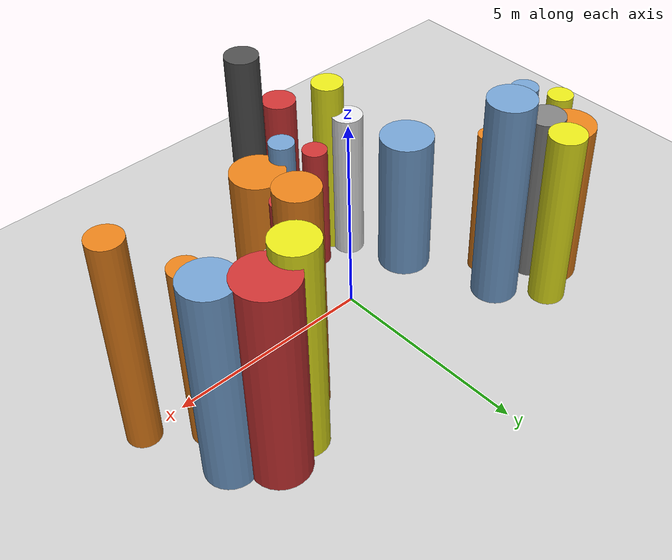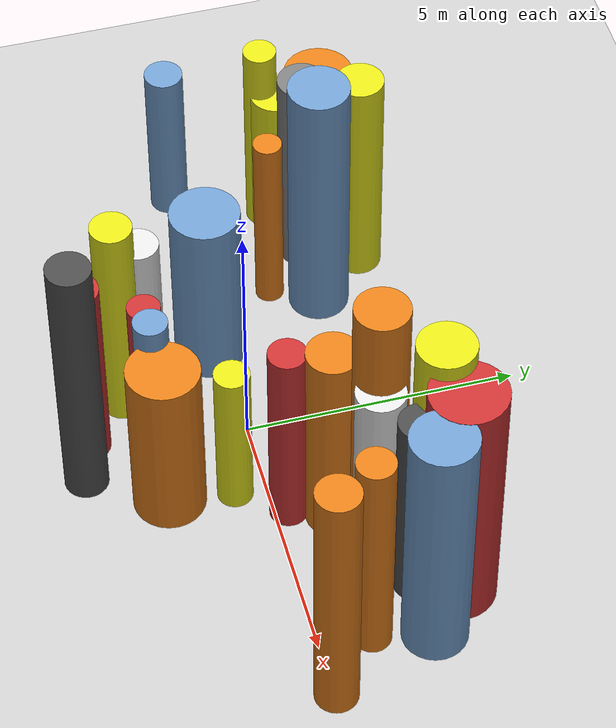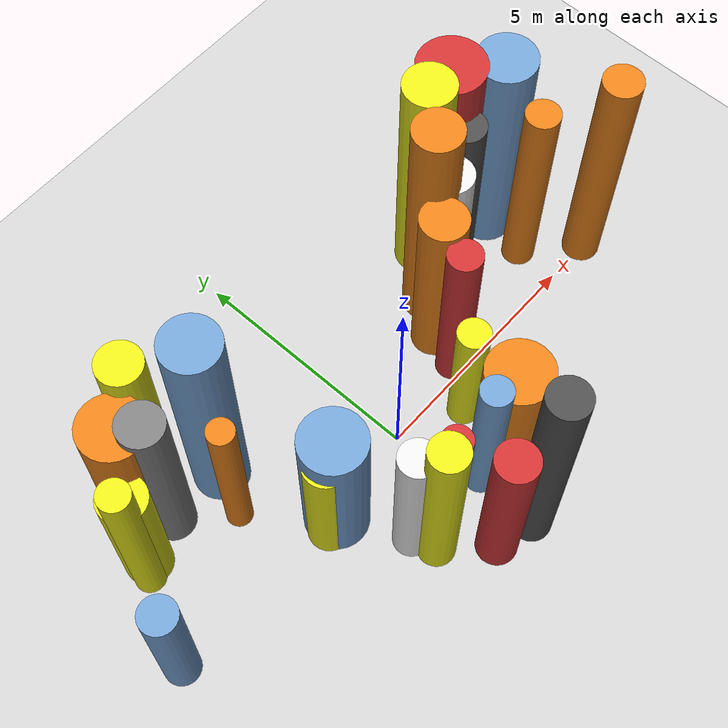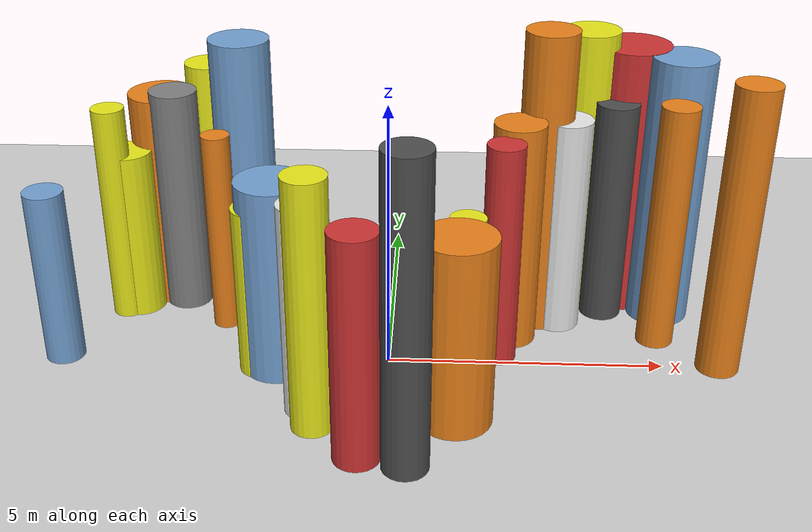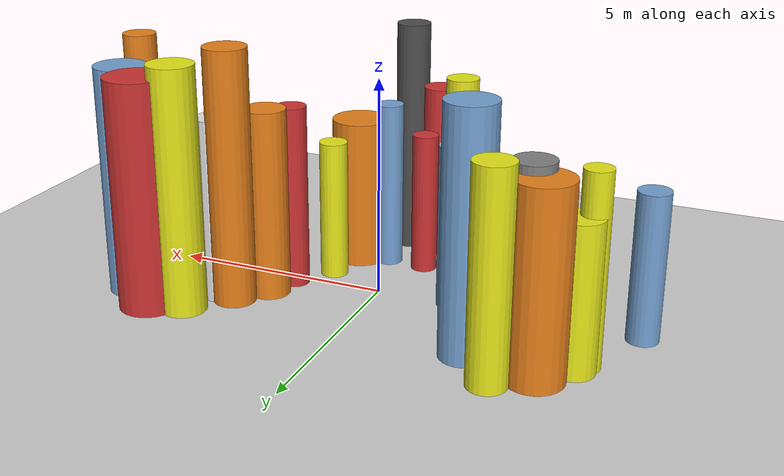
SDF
<?xml version='1.0'?>
<sdf version='1.6'>
  <world name='routeA_rl_v1__dense_recovery__rl_test__s_turn_multi_obstacle__000118'>
    <!-- Sun light -->
    <light name='sun' type='directional'>
      <cast_shadows>1</cast_shadows>
      <pose>0 0 10 0 0 0</pose>
      <diffuse>0.8 0.8 0.8 1</diffuse>
      <specular>0.2 0.2 0.2 1</specular>
      <attenuation>
        <range>1000</range>
        <constant>0.9</constant>
        <linear>0.01</linear>
        <quadratic>0.001</quadratic>
      </attenuation>
      <direction>-0.5 0.1 -0.9</direction>
    </light>

    <!-- Ground plane -->
    <model name='ground_plane'>
      <static>1</static>
      <link name='link'>
        <collision name='collision'>
          <geometry>
            <plane>
              <normal>0 0 1</normal>
              <size>100 100</size>
            </plane>
          </geometry>
          <surface>
            <contact>
              <collide_bitmask>65535</collide_bitmask>
              <ode/>
            </contact>
            <friction>
              <ode>
                <mu>100</mu>
                <mu2>50</mu2>
              </ode>
              <torsional><ode/></torsional>
            </friction>
            <bounce/>
          </surface>
          <max_contacts>10</max_contacts>
        </collision>
        <visual name='visual'>
          <cast_shadows>0</cast_shadows>
          <geometry>
            <plane>
              <normal>0 0 1</normal>
              <size>100 100</size>
            </plane>
          </geometry>
          <material>
            <script>
              <uri>file://media/materials/scripts/gazebo.material</uri>
              <n>Gazebo/Grey</n>
            </script>
          </material>
        </visual>
      </link>
    </model>

    <!-- Environment -->
    <magnetic_field>6e-06 2.3e-05 -4.2e-05</magnetic_field>
    <atmosphere type='adiabatic'/>
    <physics name='default_physics' default='0' type='ode'>
      <gravity>0 0 -9.8</gravity>
      <max_step_size>0.004</max_step_size>
      <real_time_factor>1</real_time_factor>
      <real_time_update_rate>250</real_time_update_rate>
    </physics>
    <scene>
      <ambient>0.4 0.4 0.4 1</ambient>
      <background>0.7 0.7 0.7 1</background>
      <shadows>1</shadows>
    </scene>
    <wind/>
    <spherical_coordinates>
      <surface_model>EARTH_WGS84</surface_model>
      <latitude_deg>0</latitude_deg>
      <longitude_deg>0</longitude_deg>
      <elevation>0</elevation>
      <heading_deg>0</heading_deg>
    </spherical_coordinates>

    <!-- ============ OBSTACLES (28) ============ -->
    <model name='s_turn_obs_0'>
      <static>1</static>
      <link name='link'>
        <visual name='visual'>
          <geometry>
            <cylinder>
              <radius>0.3578</radius>
              <length>3.3404</length>
            </cylinder>
          </geometry>
          <material>
            <script>
              <n>Gazebo/Blue</n>
              <uri>file://media/materials/scripts/gazebo.material</uri>
            </script>
            <ambient>0.447 0.624 0.812 1</ambient>
          </material>
        </visual>
        <collision name='collision'>
          <geometry>
            <cylinder>
              <radius>0.3578</radius>
              <length>3.3404</length>
            </cylinder>
          </geometry>
          <max_contacts>10</max_contacts>
          <surface>
            <contact><ode/></contact>
            <bounce/>
            <friction>
              <ode><mu>1</mu><mu2>1</mu2></ode>
              <torsional><ode/></torsional>
            </friction>
          </surface>
        </collision>
      </link>
      <pose>-6.0000 -0.0428 1.6702 0 0 0.0000</pose>
    </model>

    <model name='s_turn_obs_1'>
      <static>1</static>
      <link name='link'>
        <visual name='visual'>
          <geometry>
            <cylinder>
              <radius>0.3063</radius>
              <length>4.2509</length>
            </cylinder>
          </geometry>
          <material>
            <script>
              <n>Gazebo/Yellow</n>
              <uri>file://media/materials/scripts/gazebo.material</uri>
            </script>
            <ambient>0.9 0.9 0.1 1</ambient>
          </material>
        </visual>
        <collision name='collision'>
          <geometry>
            <cylinder>
              <radius>0.3063</radius>
              <length>4.2509</length>
            </cylinder>
          </geometry>
          <max_contacts>10</max_contacts>
          <surface>
            <contact><ode/></contact>
            <bounce/>
            <friction>
              <ode><mu>1</mu><mu2>1</mu2></ode>
              <torsional><ode/></torsional>
            </friction>
          </surface>
        </collision>
      </link>
      <pose>-5.2000 1.6085 2.1255 0 0 0.0000</pose>
    </model>

    <model name='s_turn_obs_2'>
      <static>1</static>
      <link name='link'>
        <visual name='visual'>
          <geometry>
            <cylinder>
              <radius>0.6320</radius>
              <length>4.2409</length>
            </cylinder>
          </geometry>
          <material>
            <script>
              <n>Gazebo/Orange</n>
              <uri>file://media/materials/scripts/gazebo.material</uri>
            </script>
            <ambient>0.9 0.5 0.1 1</ambient>
          </material>
        </visual>
        <collision name='collision'>
          <geometry>
            <cylinder>
              <radius>0.6320</radius>
              <length>4.2409</length>
            </cylinder>
          </geometry>
          <max_contacts>10</max_contacts>
          <surface>
            <contact><ode/></contact>
            <bounce/>
            <friction>
              <ode><mu>1</mu><mu2>1</mu2></ode>
              <torsional><ode/></torsional>
            </friction>
          </surface>
        </collision>
      </link>
      <pose>-4.4000 2.5067 2.1204 0 0 0.0000</pose>
    </model>

    <model name='s_turn_obs_3'>
      <static>1</static>
      <link name='link'>
        <visual name='visual'>
          <geometry>
            <cylinder>
              <radius>0.4379</radius>
              <length>4.6467</length>
            </cylinder>
          </geometry>
          <material>
            <script>
              <n>Gazebo/Yellow</n>
              <uri>file://media/materials/scripts/gazebo.material</uri>
            </script>
            <ambient>0.9 0.9 0.1 1</ambient>
          </material>
        </visual>
        <collision name='collision'>
          <geometry>
            <cylinder>
              <radius>0.4379</radius>
              <length>4.6467</length>
            </cylinder>
          </geometry>
          <max_contacts>10</max_contacts>
          <surface>
            <contact><ode/></contact>
            <bounce/>
            <friction>
              <ode><mu>1</mu><mu2>1</mu2></ode>
              <torsional><ode/></torsional>
            </friction>
          </surface>
        </collision>
      </link>
      <pose>-3.6000 3.0685 2.3233 0 0 0.0000</pose>
    </model>

    <model name='s_turn_obs_4'>
      <static>1</static>
      <link name='link'>
        <visual name='visual'>
          <geometry>
            <cylinder>
              <radius>0.5620</radius>
              <length>5.4398</length>
            </cylinder>
          </geometry>
          <material>
            <script>
              <n>Gazebo/Blue</n>
              <uri>file://media/materials/scripts/gazebo.material</uri>
            </script>
            <ambient>0.447 0.624 0.812 1</ambient>
          </material>
        </visual>
        <collision name='collision'>
          <geometry>
            <cylinder>
              <radius>0.5620</radius>
              <length>5.4398</length>
            </cylinder>
          </geometry>
          <max_contacts>10</max_contacts>
          <surface>
            <contact><ode/></contact>
            <bounce/>
            <friction>
              <ode><mu>1</mu><mu2>1</mu2></ode>
              <torsional><ode/></torsional>
            </friction>
          </surface>
        </collision>
      </link>
      <pose>-2.8000 2.0887 2.7199 0 0 0.0000</pose>
    </model>

    <model name='s_turn_obs_5'>
      <static>1</static>
      <link name='link'>
        <visual name='visual'>
          <geometry>
            <cylinder>
              <radius>0.6413</radius>
              <length>3.7062</length>
            </cylinder>
          </geometry>
          <material>
            <script>
              <n>Gazebo/Blue</n>
              <uri>file://media/materials/scripts/gazebo.material</uri>
            </script>
            <ambient>0.447 0.624 0.812 1</ambient>
          </material>
        </visual>
        <collision name='collision'>
          <geometry>
            <cylinder>
              <radius>0.6413</radius>
              <length>3.7062</length>
            </cylinder>
          </geometry>
          <max_contacts>10</max_contacts>
          <surface>
            <contact><ode/></contact>
            <bounce/>
            <friction>
              <ode><mu>1</mu><mu2>1</mu2></ode>
              <torsional><ode/></torsional>
            </friction>
          </surface>
        </collision>
      </link>
      <pose>-2.0000 -0.2121 1.8531 0 0 0.0000</pose>
    </model>

    <model name='s_turn_obs_6'>
      <static>1</static>
      <link name='link'>
        <visual name='visual'>
          <geometry>
            <cylinder>
              <radius>0.3777</radius>
              <length>4.6523</length>
            </cylinder>
          </geometry>
          <material>
            <script>
              <n>Gazebo/Yellow</n>
              <uri>file://media/materials/scripts/gazebo.material</uri>
            </script>
            <ambient>0.9 0.9 0.1 1</ambient>
          </material>
        </visual>
        <collision name='collision'>
          <geometry>
            <cylinder>
              <radius>0.3777</radius>
              <length>4.6523</length>
            </cylinder>
          </geometry>
          <max_contacts>10</max_contacts>
          <surface>
            <contact><ode/></contact>
            <bounce/>
            <friction>
              <ode><mu>1</mu><mu2>1</mu2></ode>
              <torsional><ode/></torsional>
            </friction>
          </surface>
        </collision>
      </link>
      <pose>-1.2000 -2.0291 2.3262 0 0 0.0000</pose>
    </model>

    <model name='s_turn_obs_7'>
      <static>1</static>
      <link name='link'>
        <visual name='visual'>
          <geometry>
            <cylinder>
              <radius>0.4098</radius>
              <length>4.1521</length>
            </cylinder>
          </geometry>
          <material>
            <script>
              <n>Gazebo/Red</n>
              <uri>file://media/materials/scripts/gazebo.material</uri>
            </script>
            <ambient>0.8 0.2 0.2 1</ambient>
          </material>
        </visual>
        <collision name='collision'>
          <geometry>
            <cylinder>
              <radius>0.4098</radius>
              <length>4.1521</length>
            </cylinder>
          </geometry>
          <max_contacts>10</max_contacts>
          <surface>
            <contact><ode/></contact>
            <bounce/>
            <friction>
              <ode><mu>1</mu><mu2>1</mu2></ode>
              <torsional><ode/></torsional>
            </friction>
          </surface>
        </collision>
      </link>
      <pose>-0.4000 -2.8477 2.0760 0 0 0.0000</pose>
    </model>

    <model name='s_turn_obs_8'>
      <static>1</static>
      <link name='link'>
        <visual name='visual'>
          <geometry>
            <cylinder>
              <radius>0.3998</radius>
              <length>5.5680</length>
            </cylinder>
          </geometry>
          <material>
            <script>
              <n>Gazebo/DarkGrey</n>
              <uri>file://media/materials/scripts/gazebo.material</uri>
            </script>
            <ambient>0.3 0.3 0.3 1</ambient>
          </material>
        </visual>
        <collision name='collision'>
          <geometry>
            <cylinder>
              <radius>0.3998</radius>
              <length>5.5680</length>
            </cylinder>
          </geometry>
          <max_contacts>10</max_contacts>
          <surface>
            <contact><ode/></contact>
            <bounce/>
            <friction>
              <ode><mu>1</mu><mu2>1</mu2></ode>
              <torsional><ode/></torsional>
            </friction>
          </surface>
        </collision>
      </link>
      <pose>0.4000 -3.0506 2.7840 0 0 0.0000</pose>
    </model>

    <model name='s_turn_obs_9'>
      <static>1</static>
      <link name='link'>
        <visual name='visual'>
          <geometry>
            <cylinder>
              <radius>0.6564</radius>
              <length>3.5000</length>
            </cylinder>
          </geometry>
          <material>
            <script>
              <n>Gazebo/Orange</n>
              <uri>file://media/materials/scripts/gazebo.material</uri>
            </script>
            <ambient>0.9 0.5 0.1 1</ambient>
          </material>
        </visual>
        <collision name='collision'>
          <geometry>
            <cylinder>
              <radius>0.6564</radius>
              <length>3.5000</length>
            </cylinder>
          </geometry>
          <max_contacts>10</max_contacts>
          <surface>
            <contact><ode/></contact>
            <bounce/>
            <friction>
              <ode><mu>1</mu><mu2>1</mu2></ode>
              <torsional><ode/></torsional>
            </friction>
          </surface>
        </collision>
      </link>
      <pose>1.2000 -1.7153 1.7500 0 0 0.0000</pose>
    </model>

    <model name='s_turn_obs_10'>
      <static>1</static>
      <link name='link'>
        <visual name='visual'>
          <geometry>
            <cylinder>
              <radius>0.3435</radius>
              <length>4.2432</length>
            </cylinder>
          </geometry>
          <material>
            <script>
              <n>Gazebo/Red</n>
              <uri>file://media/materials/scripts/gazebo.material</uri>
            </script>
            <ambient>0.8 0.2 0.2 1</ambient>
          </material>
        </visual>
        <collision name='collision'>
          <geometry>
            <cylinder>
              <radius>0.3435</radius>
              <length>4.2432</length>
            </cylinder>
          </geometry>
          <max_contacts>10</max_contacts>
          <surface>
            <contact><ode/></contact>
            <bounce/>
            <friction>
              <ode><mu>1</mu><mu2>1</mu2></ode>
              <torsional><ode/></torsional>
            </friction>
          </surface>
        </collision>
      </link>
      <pose>2.0000 0.2573 2.1216 0 0 0.0000</pose>
    </model>

    <model name='s_turn_obs_11'>
      <static>1</static>
      <link name='link'>
        <visual name='visual'>
          <geometry>
            <cylinder>
              <radius>0.4869</radius>
              <length>5.8174</length>
            </cylinder>
          </geometry>
          <material>
            <script>
              <n>Gazebo/Orange</n>
              <uri>file://media/materials/scripts/gazebo.material</uri>
            </script>
            <ambient>0.9 0.5 0.1 1</ambient>
          </material>
        </visual>
        <collision name='collision'>
          <geometry>
            <cylinder>
              <radius>0.4869</radius>
              <length>5.8174</length>
            </cylinder>
          </geometry>
          <max_contacts>10</max_contacts>
          <surface>
            <contact><ode/></contact>
            <bounce/>
            <friction>
              <ode><mu>1</mu><mu2>1</mu2></ode>
              <torsional><ode/></torsional>
            </friction>
          </surface>
        </collision>
      </link>
      <pose>2.8000 1.6528 2.9087 0 0 0.0000</pose>
    </model>

    <model name='s_turn_obs_12'>
      <static>1</static>
      <link name='link'>
        <visual name='visual'>
          <geometry>
            <cylinder>
              <radius>0.5172</radius>
              <length>5.5636</length>
            </cylinder>
          </geometry>
          <material>
            <script>
              <n>Gazebo/Yellow</n>
              <uri>file://media/materials/scripts/gazebo.material</uri>
            </script>
            <ambient>0.9 0.9 0.1 1</ambient>
          </material>
        </visual>
        <collision name='collision'>
          <geometry>
            <cylinder>
              <radius>0.5172</radius>
              <length>5.5636</length>
            </cylinder>
          </geometry>
          <max_contacts>10</max_contacts>
          <surface>
            <contact><ode/></contact>
            <bounce/>
            <friction>
              <ode><mu>1</mu><mu2>1</mu2></ode>
              <torsional><ode/></torsional>
            </friction>
          </surface>
        </collision>
      </link>
      <pose>3.6000 2.5101 2.7818 0 0 0.0000</pose>
    </model>

    <model name='s_turn_obs_13'>
      <static>1</static>
      <link name='link'>
        <visual name='visual'>
          <geometry>
            <cylinder>
              <radius>0.6833</radius>
              <length>5.2535</length>
            </cylinder>
          </geometry>
          <material>
            <script>
              <n>Gazebo/Red</n>
              <uri>file://media/materials/scripts/gazebo.material</uri>
            </script>
            <ambient>0.8 0.2 0.2 1</ambient>
          </material>
        </visual>
        <collision name='collision'>
          <geometry>
            <cylinder>
              <radius>0.6833</radius>
              <length>5.2535</length>
            </cylinder>
          </geometry>
          <max_contacts>10</max_contacts>
          <surface>
            <contact><ode/></contact>
            <bounce/>
            <friction>
              <ode><mu>1</mu><mu2>1</mu2></ode>
              <torsional><ode/></torsional>
            </friction>
          </surface>
        </collision>
      </link>
      <pose>4.4000 2.6508 2.6268 0 0 0.0000</pose>
    </model>

    <model name='s_turn_obs_14'>
      <static>1</static>
      <link name='link'>
        <visual name='visual'>
          <geometry>
            <cylinder>
              <radius>0.5899</radius>
              <length>5.2458</length>
            </cylinder>
          </geometry>
          <material>
            <script>
              <n>Gazebo/Blue</n>
              <uri>file://media/materials/scripts/gazebo.material</uri>
            </script>
            <ambient>0.447 0.624 0.812 1</ambient>
          </material>
        </visual>
        <collision name='collision'>
          <geometry>
            <cylinder>
              <radius>0.5899</radius>
              <length>5.2458</length>
            </cylinder>
          </geometry>
          <max_contacts>10</max_contacts>
          <surface>
            <contact><ode/></contact>
            <bounce/>
            <friction>
              <ode><mu>1</mu><mu2>1</mu2></ode>
              <torsional><ode/></torsional>
            </friction>
          </surface>
        </collision>
      </link>
      <pose>5.2000 2.0033 2.6229 0 0 0.0000</pose>
    </model>

    <model name='s_turn_obs_15'>
      <static>1</static>
      <link name='link'>
        <visual name='visual'>
          <geometry>
            <cylinder>
              <radius>0.3898</radius>
              <length>5.4605</length>
            </cylinder>
          </geometry>
          <material>
            <script>
              <n>Gazebo/Orange</n>
              <uri>file://media/materials/scripts/gazebo.material</uri>
            </script>
            <ambient>0.9 0.5 0.1 1</ambient>
          </material>
        </visual>
        <collision name='collision'>
          <geometry>
            <cylinder>
              <radius>0.3898</radius>
              <length>5.4605</length>
            </cylinder>
          </geometry>
          <max_contacts>10</max_contacts>
          <surface>
            <contact><ode/></contact>
            <bounce/>
            <friction>
              <ode><mu>1</mu><mu2>1</mu2></ode>
              <torsional><ode/></torsional>
            </friction>
          </surface>
        </collision>
      </link>
      <pose>6.0000 0.0437 2.7302 0 0 0.0000</pose>
    </model>

    <model name='s_turn_obs2_0'>
      <static>1</static>
      <link name='link'>
        <visual name='visual'>
          <geometry>
            <cylinder>
              <radius>0.4698</radius>
              <length>3.3099</length>
            </cylinder>
          </geometry>
          <material>
            <script>
              <n>Gazebo/Yellow</n>
              <uri>file://media/materials/scripts/gazebo.material</uri>
            </script>
            <ambient>0.9 0.9 0.1 1</ambient>
          </material>
        </visual>
        <collision name='collision'>
          <geometry>
            <cylinder>
              <radius>0.4698</radius>
              <length>3.3099</length>
            </cylinder>
          </geometry>
          <max_contacts>10</max_contacts>
          <surface>
            <contact><ode/></contact>
            <bounce/>
            <friction>
              <ode><mu>1</mu><mu2>1</mu2></ode>
              <torsional><ode/></torsional>
            </friction>
          </surface>
        </collision>
      </link>
      <pose>-5.0000 1.8469 1.6549 0 0 0.0000</pose>
    </model>

    <model name='s_turn_obs2_1'>
      <static>1</static>
      <link name='link'>
        <visual name='visual'>
          <geometry>
            <cylinder>
              <radius>0.4449</radius>
              <length>4.4245</length>
            </cylinder>
          </geometry>
          <material>
            <script>
              <n>Gazebo/Grey</n>
              <uri>file://media/materials/scripts/gazebo.material</uri>
            </script>
            <ambient>0.5 0.5 0.5 1</ambient>
          </material>
        </visual>
        <collision name='collision'>
          <geometry>
            <cylinder>
              <radius>0.4449</radius>
              <length>4.4245</length>
            </cylinder>
          </geometry>
          <max_contacts>10</max_contacts>
          <surface>
            <contact><ode/></contact>
            <bounce/>
            <friction>
              <ode><mu>1</mu><mu2>1</mu2></ode>
              <torsional><ode/></torsional>
            </friction>
          </surface>
        </collision>
      </link>
      <pose>-4.0909 2.1101 2.2122 0 0 0.0000</pose>
    </model>

    <model name='s_turn_obs2_2'>
      <static>1</static>
      <link name='link'>
        <visual name='visual'>
          <geometry>
            <cylinder>
              <radius>0.2634</radius>
              <length>3.9143</length>
            </cylinder>
          </geometry>
          <material>
            <script>
              <n>Gazebo/Orange</n>
              <uri>file://media/materials/scripts/gazebo.material</uri>
            </script>
            <ambient>0.9 0.5 0.1 1</ambient>
          </material>
        </visual>
        <collision name='collision'>
          <geometry>
            <cylinder>
              <radius>0.2634</radius>
              <length>3.9143</length>
            </cylinder>
          </geometry>
          <max_contacts>10</max_contacts>
          <surface>
            <contact><ode/></contact>
            <bounce/>
            <friction>
              <ode><mu>1</mu><mu2>1</mu2></ode>
              <torsional><ode/></torsional>
            </friction>
          </surface>
        </collision>
      </link>
      <pose>-3.1818 1.2370 1.9572 0 0 0.0000</pose>
    </model>

    <model name='s_turn_obs2_3'>
      <static>1</static>
      <link name='link'>
        <visual name='visual'>
          <geometry>
            <cylinder>
              <radius>0.4298</radius>
              <length>3.2272</length>
            </cylinder>
          </geometry>
          <material>
            <script>
              <n>Gazebo/Yellow</n>
              <uri>file://media/materials/scripts/gazebo.material</uri>
            </script>
            <ambient>0.9 0.9 0.1 1</ambient>
          </material>
        </visual>
        <collision name='collision'>
          <geometry>
            <cylinder>
              <radius>0.4298</radius>
              <length>3.2272</length>
            </cylinder>
          </geometry>
          <max_contacts>10</max_contacts>
          <surface>
            <contact><ode/></contact>
            <bounce/>
            <friction>
              <ode><mu>1</mu><mu2>1</mu2></ode>
              <torsional><ode/></torsional>
            </friction>
          </surface>
        </collision>
      </link>
      <pose>-2.2727 -0.2774 1.6136 0 0 0.0000</pose>
    </model>

    <model name='s_turn_obs2_4'>
      <static>1</static>
      <link name='link'>
        <visual name='visual'>
          <geometry>
            <cylinder>
              <radius>0.3724</radius>
              <length>3.9330</length>
            </cylinder>
          </geometry>
          <material>
            <script>
              <n>Gazebo/White</n>
              <uri>file://media/materials/scripts/gazebo.material</uri>
            </script>
            <ambient>0.9 0.9 0.9 1</ambient>
          </material>
        </visual>
        <collision name='collision'>
          <geometry>
            <cylinder>
              <radius>0.3724</radius>
              <length>3.9330</length>
            </cylinder>
          </geometry>
          <max_contacts>10</max_contacts>
          <surface>
            <contact><ode/></contact>
            <bounce/>
            <friction>
              <ode><mu>1</mu><mu2>1</mu2></ode>
              <torsional><ode/></torsional>
            </friction>
          </surface>
        </collision>
      </link>
      <pose>-1.3636 -1.5484 1.9665 0 0 0.0000</pose>
    </model>

    <model name='s_turn_obs2_5'>
      <static>1</static>
      <link name='link'>
        <visual name='visual'>
          <geometry>
            <cylinder>
              <radius>0.3023</radius>
              <length>3.3138</length>
            </cylinder>
          </geometry>
          <material>
            <script>
              <n>Gazebo/Red</n>
              <uri>file://media/materials/scripts/gazebo.material</uri>
            </script>
            <ambient>0.8 0.2 0.2 1</ambient>
          </material>
        </visual>
        <collision name='collision'>
          <geometry>
            <cylinder>
              <radius>0.3023</radius>
              <length>3.3138</length>
            </cylinder>
          </geometry>
          <max_contacts>10</max_contacts>
          <surface>
            <contact><ode/></contact>
            <bounce/>
            <friction>
              <ode><mu>1</mu><mu2>1</mu2></ode>
              <torsional><ode/></torsional>
            </friction>
          </surface>
        </collision>
      </link>
      <pose>-0.4545 -1.6805 1.6569 0 0 0.0000</pose>
    </model>

    <model name='s_turn_obs2_6'>
      <static>1</static>
      <link name='link'>
        <visual name='visual'>
          <geometry>
            <cylinder>
              <radius>0.3102</radius>
              <length>3.9271</length>
            </cylinder>
          </geometry>
          <material>
            <script>
              <n>Gazebo/Blue</n>
              <uri>file://media/materials/scripts/gazebo.material</uri>
            </script>
            <ambient>0.447 0.624 0.812 1</ambient>
          </material>
        </visual>
        <collision name='collision'>
          <geometry>
            <cylinder>
              <radius>0.3102</radius>
              <length>3.9271</length>
            </cylinder>
          </geometry>
          <max_contacts>10</max_contacts>
          <surface>
            <contact><ode/></contact>
            <bounce/>
            <friction>
              <ode><mu>1</mu><mu2>1</mu2></ode>
              <torsional><ode/></torsional>
            </friction>
          </surface>
        </collision>
      </link>
      <pose>0.4545 -1.7457 1.9636 0 0 0.0000</pose>
    </model>

    <model name='s_turn_obs2_7'>
      <static>1</static>
      <link name='link'>
        <visual name='visual'>
          <geometry>
            <cylinder>
              <radius>0.3228</radius>
              <length>3.2452</length>
            </cylinder>
          </geometry>
          <material>
            <script>
              <n>Gazebo/Yellow</n>
              <uri>file://media/materials/scripts/gazebo.material</uri>
            </script>
            <ambient>0.9 0.9 0.1 1</ambient>
          </material>
        </visual>
        <collision name='collision'>
          <geometry>
            <cylinder>
              <radius>0.3228</radius>
              <length>3.2452</length>
            </cylinder>
          </geometry>
          <max_contacts>10</max_contacts>
          <surface>
            <contact><ode/></contact>
            <bounce/>
            <friction>
              <ode><mu>1</mu><mu2>1</mu2></ode>
              <torsional><ode/></torsional>
            </friction>
          </surface>
        </collision>
      </link>
      <pose>1.3636 -0.5607 1.6226 0 0 0.0000</pose>
    </model>

    <model name='s_turn_obs2_8'>
      <static>1</static>
      <link name='link'>
        <visual name='visual'>
          <geometry>
            <cylinder>
              <radius>0.4734</radius>
              <length>4.3509</length>
            </cylinder>
          </geometry>
          <material>
            <script>
              <n>Gazebo/Orange</n>
              <uri>file://media/materials/scripts/gazebo.material</uri>
            </script>
            <ambient>0.9 0.5 0.1 1</ambient>
          </material>
        </visual>
        <collision name='collision'>
          <geometry>
            <cylinder>
              <radius>0.4734</radius>
              <length>4.3509</length>
            </cylinder>
          </geometry>
          <max_contacts>10</max_contacts>
          <surface>
            <contact><ode/></contact>
            <bounce/>
            <friction>
              <ode><mu>1</mu><mu2>1</mu2></ode>
              <torsional><ode/></torsional>
            </friction>
          </surface>
        </collision>
      </link>
      <pose>2.2727 0.9725 2.1754 0 0 0.0000</pose>
    </model>

    <model name='s_turn_obs2_9'>
      <static>1</static>
      <link name='link'>
        <visual name='visual'>
          <geometry>
            <cylinder>
              <radius>0.4407</radius>
              <length>4.2027</length>
            </cylinder>
          </geometry>
          <material>
            <script>
              <n>Gazebo/White</n>
              <uri>file://media/materials/scripts/gazebo.material</uri>
            </script>
            <ambient>0.9 0.9 0.9 1</ambient>
          </material>
        </visual>
        <collision name='collision'>
          <geometry>
            <cylinder>
              <radius>0.4407</radius>
              <length>4.2027</length>
            </cylinder>
          </geometry>
          <max_contacts>10</max_contacts>
          <surface>
            <contact><ode/></contact>
            <bounce/>
            <friction>
              <ode><mu>1</mu><mu2>1</mu2></ode>
              <torsional><ode/></torsional>
            </friction>
          </surface>
        </collision>
      </link>
      <pose>3.1818 1.5465 2.1013 0 0 0.0000</pose>
    </model>

    <model name='s_turn_obs2_10'>
      <static>1</static>
      <link name='link'>
        <visual name='visual'>
          <geometry>
            <cylinder>
              <radius>0.3954</radius>
              <length>4.3678</length>
            </cylinder>
          </geometry>
          <material>
            <script>
              <n>Gazebo/DarkGrey</n>
              <uri>file://media/materials/scripts/gazebo.material</uri>
            </script>
            <ambient>0.3 0.3 0.3 1</ambient>
          </material>
        </visual>
        <collision name='collision'>
          <geometry>
            <cylinder>
              <radius>0.3954</radius>
              <length>4.3678</length>
            </cylinder>
          </geometry>
          <max_contacts>10</max_contacts>
          <surface>
            <contact><ode/></contact>
            <bounce/>
            <friction>
              <ode><mu>1</mu><mu2>1</mu2></ode>
              <torsional><ode/></torsional>
            </friction>
          </surface>
        </collision>
      </link>
      <pose>4.0909 1.9706 2.1839 0 0 0.0000</pose>
    </model>

    <model name='s_turn_obs2_11'>
      <static>1</static>
      <link name='link'>
        <visual name='visual'>
          <geometry>
            <cylinder>
              <radius>0.3436</radius>
              <length>4.7141</length>
            </cylinder>
          </geometry>
          <material>
            <script>
              <n>Gazebo/Orange</n>
              <uri>file://media/materials/scripts/gazebo.material</uri>
            </script>
            <ambient>0.9 0.5 0.1 1</ambient>
          </material>
        </visual>
        <collision name='collision'>
          <geometry>
            <cylinder>
              <radius>0.3436</radius>
              <length>4.7141</length>
            </cylinder>
          </geometry>
          <max_contacts>10</max_contacts>
          <surface>
            <contact><ode/></contact>
            <bounce/>
            <friction>
              <ode><mu>1</mu><mu2>1</mu2></ode>
              <torsional><ode/></torsional>
            </friction>
          </surface>
        </collision>
      </link>
      <pose>5.0000 0.9472 2.3571 0 0 0.0000</pose>
    </model>

    <!-- GUI camera -->
    <gui fullscreen='0'>
      <camera name='user_camera'>
        <pose>-15 0 18 0 0.85 0.15</pose>
        <view_controller>orbit</view_controller>
        <projection_type>perspective</projection_type>
      </camera>
    </gui>
  </world>
</sdf>
